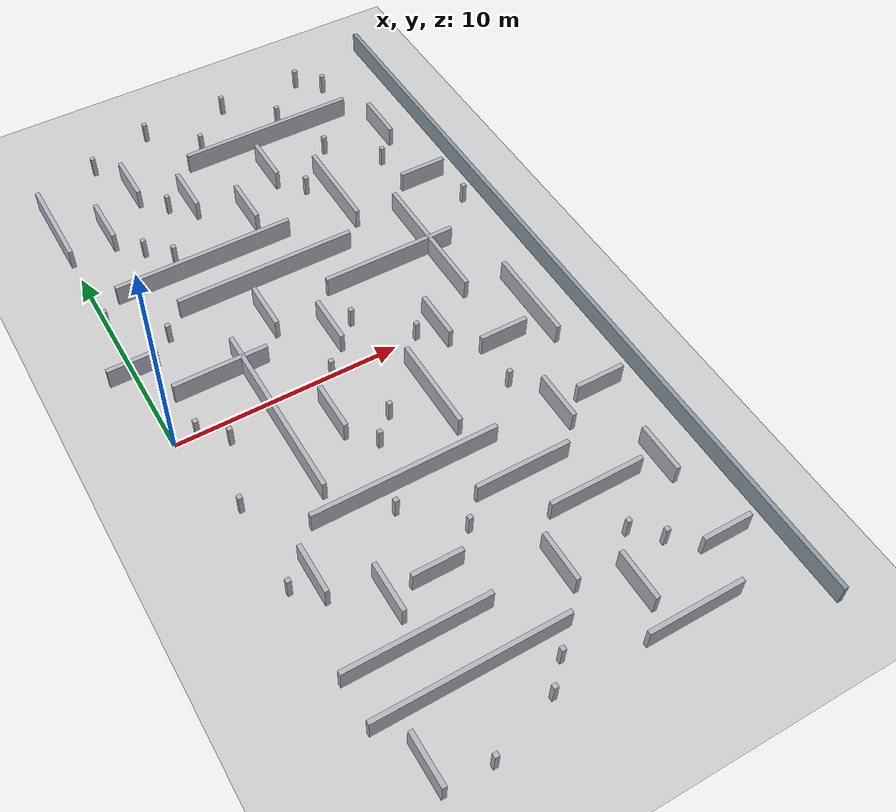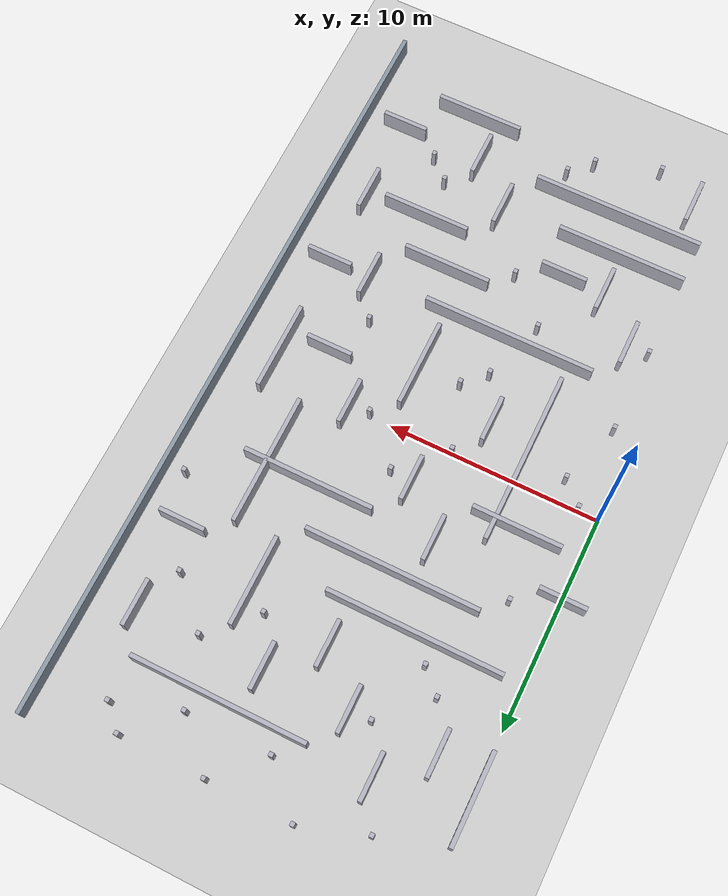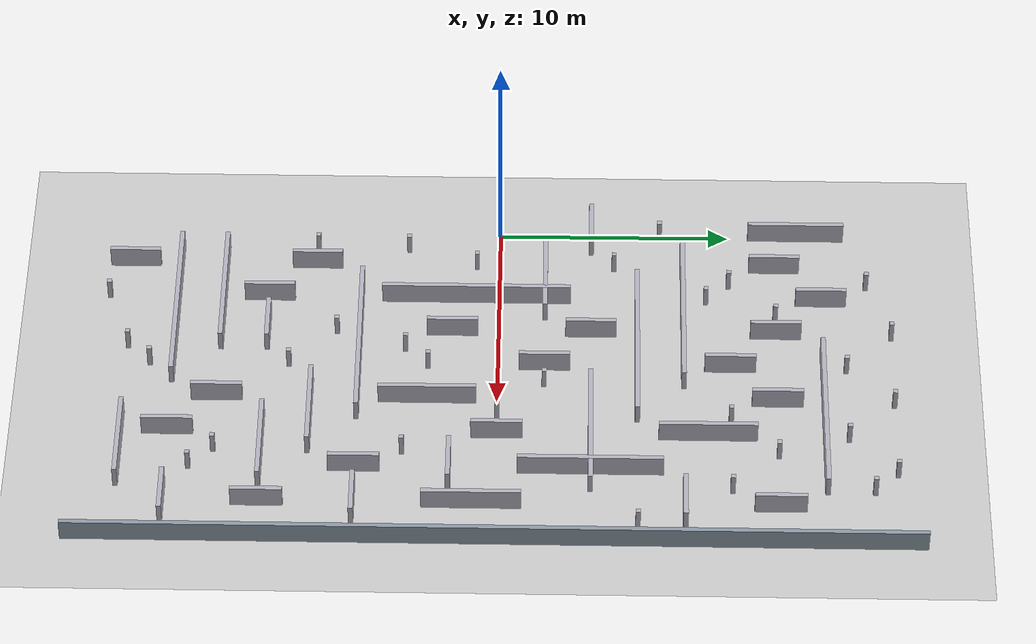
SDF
<sdf version="1.6">
 <world name="maze">
  <include><uri>model://sun</uri></include>
  <include><uri>model://ground_plane</uri></include>
  <model name="shell_e">
   <pose>18.000 0.000 0.500 0 0 0</pose>
   <static>true</static>
   <link name="link">
    <collision name="collision"><geometry><box><size>0.200 36.200 1.000</size></box></geometry></collision>
    <visual name="visual">
     <geometry><box><size>0.200 36.200 1.000</size></box></geometry>
     <material><ambient>0.55 0.6 0.65 1</ambient><diffuse>0.55 0.6 0.65 1</diffuse></material>
    </visual>
   </link>
  </model>
  <model name="mv033">
   <pose>0.000 7.000 0.500 0 0 0</pose>
   <static>true</static>
   <link name="link">
    <collision name="collision"><geometry><box><size>0.200 0.200 1.000</size></box></geometry></collision>
    <visual name="visual">
     <geometry><box><size>0.200 0.200 1.000</size></box></geometry>
     <material><ambient>0.7 0.7 0.75 1</ambient><diffuse>0.7 0.7 0.75 1</diffuse></material>
    </visual>
   </link>
  </model>
  <model name="mv034">
   <pose>0.000 13.000 0.500 0 0 0</pose>
   <static>true</static>
   <link name="link">
    <collision name="collision"><geometry><box><size>0.200 4.200 1.000</size></box></geometry></collision>
    <visual name="visual">
     <geometry><box><size>0.200 4.200 1.000</size></box></geometry>
     <material><ambient>0.7 0.7 0.75 1</ambient><diffuse>0.7 0.7 0.75 1</diffuse></material>
    </visual>
   </link>
  </model>
  <model name="mv035">
   <pose>2.000 -16.000 0.500 0 0 0</pose>
   <static>true</static>
   <link name="link">
    <collision name="collision"><geometry><box><size>0.200 2.200 1.000</size></box></geometry></collision>
    <visual name="visual">
     <geometry><box><size>0.200 2.200 1.000</size></box></geometry>
     <material><ambient>0.7 0.7 0.75 1</ambient><diffuse>0.7 0.7 0.75 1</diffuse></material>
    </visual>
   </link>
  </model>
  <model name="mv036">
   <pose>2.000 -8.000 0.500 0 0 0</pose>
   <static>true</static>
   <link name="link">
    <collision name="collision"><geometry><box><size>0.200 2.200 1.000</size></box></geometry></collision>
    <visual name="visual">
     <geometry><box><size>0.200 2.200 1.000</size></box></geometry>
     <material><ambient>0.7 0.7 0.75 1</ambient><diffuse>0.7 0.7 0.75 1</diffuse></material>
    </visual>
   </link>
  </model>
  <model name="mv037">
   <pose>2.000 -1.000 0.500 0 0 0</pose>
   <static>true</static>
   <link name="link">
    <collision name="collision"><geometry><box><size>0.200 0.200 1.000</size></box></geometry></collision>
    <visual name="visual">
     <geometry><box><size>0.200 0.200 1.000</size></box></geometry>
     <material><ambient>0.7 0.7 0.75 1</ambient><diffuse>0.7 0.7 0.75 1</diffuse></material>
    </visual>
   </link>
  </model>
  <model name="mv038">
   <pose>2.000 5.000 0.500 0 0 0</pose>
   <static>true</static>
   <link name="link">
    <collision name="collision"><geometry><box><size>0.200 0.200 1.000</size></box></geometry></collision>
    <visual name="visual">
     <geometry><box><size>0.200 0.200 1.000</size></box></geometry>
     <material><ambient>0.7 0.7 0.75 1</ambient><diffuse>0.7 0.7 0.75 1</diffuse></material>
    </visual>
   </link>
  </model>
  <model name="mv039">
   <pose>2.000 12.000 0.500 0 0 0</pose>
   <static>true</static>
   <link name="link">
    <collision name="collision"><geometry><box><size>0.200 2.200 1.000</size></box></geometry></collision>
    <visual name="visual">
     <geometry><box><size>0.200 2.200 1.000</size></box></geometry>
     <material><ambient>0.7 0.7 0.75 1</ambient><diffuse>0.7 0.7 0.75 1</diffuse></material>
    </visual>
   </link>
  </model>
  <model name="mv040">
   <pose>4.000 -17.000 0.500 0 0 0</pose>
   <static>true</static>
   <link name="link">
    <collision name="collision"><geometry><box><size>0.200 0.200 1.000</size></box></geometry></collision>
    <visual name="visual">
     <geometry><box><size>0.200 0.200 1.000</size></box></geometry>
     <material><ambient>0.7 0.7 0.75 1</ambient><diffuse>0.7 0.7 0.75 1</diffuse></material>
    </visual>
   </link>
  </model>
  <model name="mv041">
   <pose>4.000 -10.000 0.500 0 0 0</pose>
   <static>true</static>
   <link name="link">
    <collision name="collision"><geometry><box><size>0.200 2.200 1.000</size></box></geometry></collision>
    <visual name="visual">
     <geometry><box><size>0.200 2.200 1.000</size></box></geometry>
     <material><ambient>0.7 0.7 0.75 1</ambient><diffuse>0.7 0.7 0.75 1</diffuse></material>
    </visual>
   </link>
  </model>
  <model name="mv042">
   <pose>4.000 -1.000 0.500 0 0 0</pose>
   <static>true</static>
   <link name="link">
    <collision name="collision"><geometry><box><size>0.200 8.200 1.000</size></box></geometry></collision>
    <visual name="visual">
     <geometry><box><size>0.200 8.200 1.000</size></box></geometry>
     <material><ambient>0.7 0.7 0.75 1</ambient><diffuse>0.7 0.7 0.75 1</diffuse></material>
    </visual>
   </link>
  </model>
  <model name="mv043">
   <pose>4.000 9.000 0.500 0 0 0</pose>
   <static>true</static>
   <link name="link">
    <collision name="collision"><geometry><box><size>0.200 0.200 1.000</size></box></geometry></collision>
    <visual name="visual">
     <geometry><box><size>0.200 0.200 1.000</size></box></geometry>
     <material><ambient>0.7 0.7 0.75 1</ambient><diffuse>0.7 0.7 0.75 1</diffuse></material>
    </visual>
   </link>
  </model>
  <model name="mv044">
   <pose>4.000 14.000 0.500 0 0 0</pose>
   <static>true</static>
   <link name="link">
    <collision name="collision"><geometry><box><size>0.200 2.200 1.000</size></box></geometry></collision>
    <visual name="visual">
     <geometry><box><size>0.200 2.200 1.000</size></box></geometry>
     <material><ambient>0.7 0.7 0.75 1</ambient><diffuse>0.7 0.7 0.75 1</diffuse></material>
    </visual>
   </link>
  </model>
  <model name="mv045">
   <pose>6.000 -7.000 0.500 0 0 0</pose>
   <static>true</static>
   <link name="link">
    <collision name="collision"><geometry><box><size>0.200 0.200 1.000</size></box></geometry></collision>
    <visual name="visual">
     <geometry><box><size>0.200 0.200 1.000</size></box></geometry>
     <material><ambient>0.7 0.7 0.75 1</ambient><diffuse>0.7 0.7 0.75 1</diffuse></material>
    </visual>
   </link>
  </model>
  <model name="mv046">
   <pose>6.000 -2.000 0.500 0 0 0</pose>
   <static>true</static>
   <link name="link">
    <collision name="collision"><geometry><box><size>0.200 2.200 1.000</size></box></geometry></collision>
    <visual name="visual">
     <geometry><box><size>0.200 2.200 1.000</size></box></geometry>
     <material><ambient>0.7 0.7 0.75 1</ambient><diffuse>0.7 0.7 0.75 1</diffuse></material>
    </visual>
   </link>
  </model>
  <model name="mv047">
   <pose>6.000 4.000 0.500 0 0 0</pose>
   <static>true</static>
   <link name="link">
    <collision name="collision"><geometry><box><size>0.200 2.200 1.000</size></box></geometry></collision>
    <visual name="visual">
     <geometry><box><size>0.200 2.200 1.000</size></box></geometry>
     <material><ambient>0.7 0.7 0.75 1</ambient><diffuse>0.7 0.7 0.75 1</diffuse></material>
    </visual>
   </link>
  </model>
  <model name="mv048">
   <pose>6.000 12.000 0.500 0 0 0</pose>
   <static>true</static>
   <link name="link">
    <collision name="collision"><geometry><box><size>0.200 2.200 1.000</size></box></geometry></collision>
    <visual name="visual">
     <geometry><box><size>0.200 2.200 1.000</size></box></geometry>
     <material><ambient>0.7 0.7 0.75 1</ambient><diffuse>0.7 0.7 0.75 1</diffuse></material>
    </visual>
   </link>
  </model>
  <model name="mv049">
   <pose>6.000 17.000 0.500 0 0 0</pose>
   <static>true</static>
   <link name="link">
    <collision name="collision"><geometry><box><size>0.200 0.200 1.000</size></box></geometry></collision>
    <visual name="visual">
     <geometry><box><size>0.200 0.200 1.000</size></box></geometry>
     <material><ambient>0.7 0.7 0.75 1</ambient><diffuse>0.7 0.7 0.75 1</diffuse></material>
    </visual>
   </link>
  </model>
  <model name="mv050">
   <pose>8.000 -15.000 0.500 0 0 0</pose>
   <static>true</static>
   <link name="link">
    <collision name="collision"><geometry><box><size>0.200 0.200 1.000</size></box></geometry></collision>
    <visual name="visual">
     <geometry><box><size>0.200 0.200 1.000</size></box></geometry>
     <material><ambient>0.7 0.7 0.75 1</ambient><diffuse>0.7 0.7 0.75 1</diffuse></material>
    </visual>
   </link>
  </model>
  <model name="mv051">
   <pose>8.000 -9.000 0.500 0 0 0</pose>
   <static>true</static>
   <link name="link">
    <collision name="collision"><geometry><box><size>0.200 0.200 1.000</size></box></geometry></collision>
    <visual name="visual">
     <geometry><box><size>0.200 0.200 1.000</size></box></geometry>
     <material><ambient>0.7 0.7 0.75 1</ambient><diffuse>0.7 0.7 0.75 1</diffuse></material>
    </visual>
   </link>
  </model>
  <model name="mv052">
   <pose>8.000 -3.000 0.500 0 0 0</pose>
   <static>true</static>
   <link name="link">
    <collision name="collision"><geometry><box><size>0.200 0.200 1.000</size></box></geometry></collision>
    <visual name="visual">
     <geometry><box><size>0.200 0.200 1.000</size></box></geometry>
     <material><ambient>0.7 0.7 0.75 1</ambient><diffuse>0.7 0.7 0.75 1</diffuse></material>
    </visual>
   </link>
  </model>
  <model name="mv053">
   <pose>8.000 2.000 0.500 0 0 0</pose>
   <static>true</static>
   <link name="link">
    <collision name="collision"><geometry><box><size>0.200 2.200 1.000</size></box></geometry></collision>
    <visual name="visual">
     <geometry><box><size>0.200 2.200 1.000</size></box></geometry>
     <material><ambient>0.7 0.7 0.75 1</ambient><diffuse>0.7 0.7 0.75 1</diffuse></material>
    </visual>
   </link>
  </model>
  <model name="mv054">
   <pose>8.000 10.000 0.500 0 0 0</pose>
   <static>true</static>
   <link name="link">
    <collision name="collision"><geometry><box><size>0.200 2.200 1.000</size></box></geometry></collision>
    <visual name="visual">
     <geometry><box><size>0.200 2.200 1.000</size></box></geometry>
     <material><ambient>0.7 0.7 0.75 1</ambient><diffuse>0.7 0.7 0.75 1</diffuse></material>
    </visual>
   </link>
  </model>
  <model name="mv055">
   <pose>8.000 15.000 0.500 0 0 0</pose>
   <static>true</static>
   <link name="link">
    <collision name="collision"><geometry><box><size>0.200 0.200 1.000</size></box></geometry></collision>
    <visual name="visual">
     <geometry><box><size>0.200 0.200 1.000</size></box></geometry>
     <material><ambient>0.7 0.7 0.75 1</ambient><diffuse>0.7 0.7 0.75 1</diffuse></material>
    </visual>
   </link>
  </model>
  <model name="mv056">
   <pose>10.000 -12.000 0.500 0 0 0</pose>
   <static>true</static>
   <link name="link">
    <collision name="collision"><geometry><box><size>0.200 2.200 1.000</size></box></geometry></collision>
    <visual name="visual">
     <geometry><box><size>0.200 2.200 1.000</size></box></geometry>
     <material><ambient>0.7 0.7 0.75 1</ambient><diffuse>0.7 0.7 0.75 1</diffuse></material>
    </visual>
   </link>
  </model>
  <model name="mv057">
   <pose>10.000 -3.000 0.500 0 0 0</pose>
   <static>true</static>
   <link name="link">
    <collision name="collision"><geometry><box><size>0.200 4.200 1.000</size></box></geometry></collision>
    <visual name="visual">
     <geometry><box><size>0.200 4.200 1.000</size></box></geometry>
     <material><ambient>0.7 0.7 0.75 1</ambient><diffuse>0.7 0.7 0.75 1</diffuse></material>
    </visual>
   </link>
  </model>
  <model name="mv058">
   <pose>10.000 12.000 0.500 0 0 0</pose>
   <static>true</static>
   <link name="link">
    <collision name="collision"><geometry><box><size>0.200 2.200 1.000</size></box></geometry></collision>
    <visual name="visual">
     <geometry><box><size>0.200 2.200 1.000</size></box></geometry>
     <material><ambient>0.7 0.7 0.75 1</ambient><diffuse>0.7 0.7 0.75 1</diffuse></material>
    </visual>
   </link>
  </model>
  <model name="mv059">
   <pose>10.000 17.000 0.500 0 0 0</pose>
   <static>true</static>
   <link name="link">
    <collision name="collision"><geometry><box><size>0.200 0.200 1.000</size></box></geometry></collision>
    <visual name="visual">
     <geometry><box><size>0.200 0.200 1.000</size></box></geometry>
     <material><ambient>0.7 0.7 0.75 1</ambient><diffuse>0.7 0.7 0.75 1</diffuse></material>
    </visual>
   </link>
  </model>
  <model name="mv060">
   <pose>12.000 -14.000 0.500 0 0 0</pose>
   <static>true</static>
   <link name="link">
    <collision name="collision"><geometry><box><size>0.200 2.200 1.000</size></box></geometry></collision>
    <visual name="visual">
     <geometry><box><size>0.200 2.200 1.000</size></box></geometry>
     <material><ambient>0.7 0.7 0.75 1</ambient><diffuse>0.7 0.7 0.75 1</diffuse></material>
    </visual>
   </link>
  </model>
  <model name="mv061">
   <pose>12.000 0.000 0.500 0 0 0</pose>
   <static>true</static>
   <link name="link">
    <collision name="collision"><geometry><box><size>0.200 2.200 1.000</size></box></geometry></collision>
    <visual name="visual">
     <geometry><box><size>0.200 2.200 1.000</size></box></geometry>
     <material><ambient>0.7 0.7 0.75 1</ambient><diffuse>0.7 0.7 0.75 1</diffuse></material>
    </visual>
   </link>
  </model>
  <model name="mv062">
   <pose>12.000 9.000 0.500 0 0 0</pose>
   <static>true</static>
   <link name="link">
    <collision name="collision"><geometry><box><size>0.200 4.200 1.000</size></box></geometry></collision>
    <visual name="visual">
     <geometry><box><size>0.200 4.200 1.000</size></box></geometry>
     <material><ambient>0.7 0.7 0.75 1</ambient><diffuse>0.7 0.7 0.75 1</diffuse></material>
    </visual>
   </link>
  </model>
  <model name="mv063">
   <pose>12.000 15.000 0.500 0 0 0</pose>
   <static>true</static>
   <link name="link">
    <collision name="collision"><geometry><box><size>0.200 0.200 1.000</size></box></geometry></collision>
    <visual name="visual">
     <geometry><box><size>0.200 0.200 1.000</size></box></geometry>
     <material><ambient>0.7 0.7 0.75 1</ambient><diffuse>0.7 0.7 0.75 1</diffuse></material>
    </visual>
   </link>
  </model>
  <model name="mv064">
   <pose>14.000 -13.000 0.500 0 0 0</pose>
   <static>true</static>
   <link name="link">
    <collision name="collision"><geometry><box><size>0.200 0.200 1.000</size></box></geometry></collision>
    <visual name="visual">
     <geometry><box><size>0.200 0.200 1.000</size></box></geometry>
     <material><ambient>0.7 0.7 0.75 1</ambient><diffuse>0.7 0.7 0.75 1</diffuse></material>
    </visual>
   </link>
  </model>
  <model name="mv065">
   <pose>14.000 -6.000 0.500 0 0 0</pose>
   <static>true</static>
   <link name="link">
    <collision name="collision"><geometry><box><size>0.200 2.200 1.000</size></box></geometry></collision>
    <visual name="visual">
     <geometry><box><size>0.200 2.200 1.000</size></box></geometry>
     <material><ambient>0.7 0.7 0.75 1</ambient><diffuse>0.7 0.7 0.75 1</diffuse></material>
    </visual>
   </link>
  </model>
  <model name="mv066">
   <pose>14.000 4.000 0.500 0 0 0</pose>
   <static>true</static>
   <link name="link">
    <collision name="collision"><geometry><box><size>0.200 6.200 1.000</size></box></geometry></collision>
    <visual name="visual">
     <geometry><box><size>0.200 6.200 1.000</size></box></geometry>
     <material><ambient>0.7 0.7 0.75 1</ambient><diffuse>0.7 0.7 0.75 1</diffuse></material>
    </visual>
   </link>
  </model>
  <model name="mv067">
   <pose>14.000 17.000 0.500 0 0 0</pose>
   <static>true</static>
   <link name="link">
    <collision name="collision"><geometry><box><size>0.200 0.200 1.000</size></box></geometry></collision>
    <visual name="visual">
     <geometry><box><size>0.200 0.200 1.000</size></box></geometry>
     <material><ambient>0.7 0.7 0.75 1</ambient><diffuse>0.7 0.7 0.75 1</diffuse></material>
    </visual>
   </link>
  </model>
  <model name="mv068">
   <pose>16.000 -10.000 0.500 0 0 0</pose>
   <static>true</static>
   <link name="link">
    <collision name="collision"><geometry><box><size>0.200 2.200 1.000</size></box></geometry></collision>
    <visual name="visual">
     <geometry><box><size>0.200 2.200 1.000</size></box></geometry>
     <material><ambient>0.7 0.7 0.75 1</ambient><diffuse>0.7 0.7 0.75 1</diffuse></material>
    </visual>
   </link>
  </model>
  <model name="mv069">
   <pose>16.000 -1.000 0.500 0 0 0</pose>
   <static>true</static>
   <link name="link">
    <collision name="collision"><geometry><box><size>0.200 4.200 1.000</size></box></geometry></collision>
    <visual name="visual">
     <geometry><box><size>0.200 4.200 1.000</size></box></geometry>
     <material><ambient>0.7 0.7 0.75 1</ambient><diffuse>0.7 0.7 0.75 1</diffuse></material>
    </visual>
   </link>
  </model>
  <model name="mv070">
   <pose>16.000 12.000 0.500 0 0 0</pose>
   <static>true</static>
   <link name="link">
    <collision name="collision"><geometry><box><size>0.200 2.200 1.000</size></box></geometry></collision>
    <visual name="visual">
     <geometry><box><size>0.200 2.200 1.000</size></box></geometry>
     <material><ambient>0.7 0.7 0.75 1</ambient><diffuse>0.7 0.7 0.75 1</diffuse></material>
    </visual>
   </link>
  </model>
  <model name="mh002">
   <pose>7.000 -16.000 0.500 0 0 0</pose>
   <static>true</static>
   <link name="link">
    <collision name="collision"><geometry><box><size>0.200 0.200 1.000</size></box></geometry></collision>
    <visual name="visual">
     <geometry><box><size>0.200 0.200 1.000</size></box></geometry>
     <material><ambient>0.7 0.7 0.75 1</ambient><diffuse>0.7 0.7 0.75 1</diffuse></material>
    </visual>
   </link>
  </model>
  <model name="mh003">
   <pose>13.000 -16.000 0.500 0 0 0</pose>
   <static>true</static>
   <link name="link">
    <collision name="collision"><geometry><box><size>4.200 0.200 1.000</size></box></geometry></collision>
    <visual name="visual">
     <geometry><box><size>4.200 0.200 1.000</size></box></geometry>
     <material><ambient>0.7 0.7 0.75 1</ambient><diffuse>0.7 0.7 0.75 1</diffuse></material>
    </visual>
   </link>
  </model>
  <model name="mh007">
   <pose>5.000 -14.000 0.500 0 0 0</pose>
   <static>true</static>
   <link name="link">
    <collision name="collision"><geometry><box><size>8.200 0.200 1.000</size></box></geometry></collision>
    <visual name="visual">
     <geometry><box><size>8.200 0.200 1.000</size></box></geometry>
     <material><ambient>0.7 0.7 0.75 1</ambient><diffuse>0.7 0.7 0.75 1</diffuse></material>
    </visual>
   </link>
  </model>
  <model name="mh008">
   <pose>16.000 -14.000 0.500 0 0 0</pose>
   <static>true</static>
   <link name="link">
    <collision name="collision"><geometry><box><size>2.200 0.200 1.000</size></box></geometry></collision>
    <visual name="visual">
     <geometry><box><size>2.200 0.200 1.000</size></box></geometry>
     <material><ambient>0.7 0.7 0.75 1</ambient><diffuse>0.7 0.7 0.75 1</diffuse></material>
    </visual>
   </link>
  </model>
  <model name="mh011">
   <pose>4.000 -12.000 0.500 0 0 0</pose>
   <static>true</static>
   <link name="link">
    <collision name="collision"><geometry><box><size>6.200 0.200 1.000</size></box></geometry></collision>
    <visual name="visual">
     <geometry><box><size>6.200 0.200 1.000</size></box></geometry>
     <material><ambient>0.7 0.7 0.75 1</ambient><diffuse>0.7 0.7 0.75 1</diffuse></material>
    </visual>
   </link>
  </model>
  <model name="mh012">
   <pose>13.000 -12.000 0.500 0 0 0</pose>
   <static>true</static>
   <link name="link">
    <collision name="collision"><geometry><box><size>0.200 0.200 1.000</size></box></geometry></collision>
    <visual name="visual">
     <geometry><box><size>0.200 0.200 1.000</size></box></geometry>
     <material><ambient>0.7 0.7 0.75 1</ambient><diffuse>0.7 0.7 0.75 1</diffuse></material>
    </visual>
   </link>
  </model>
  <model name="mh015">
   <pose>6.000 -10.000 0.500 0 0 0</pose>
   <static>true</static>
   <link name="link">
    <collision name="collision"><geometry><box><size>2.200 0.200 1.000</size></box></geometry></collision>
    <visual name="visual">
     <geometry><box><size>2.200 0.200 1.000</size></box></geometry>
     <material><ambient>0.7 0.7 0.75 1</ambient><diffuse>0.7 0.7 0.75 1</diffuse></material>
    </visual>
   </link>
  </model>
  <model name="mh016">
   <pose>13.000 -10.000 0.500 0 0 0</pose>
   <static>true</static>
   <link name="link">
    <collision name="collision"><geometry><box><size>4.200 0.200 1.000</size></box></geometry></collision>
    <visual name="visual">
     <geometry><box><size>4.200 0.200 1.000</size></box></geometry>
     <material><ambient>0.7 0.7 0.75 1</ambient><diffuse>0.7 0.7 0.75 1</diffuse></material>
    </visual>
   </link>
  </model>
  <model name="mh019">
   <pose>1.000 -8.000 0.500 0 0 0</pose>
   <static>true</static>
   <link name="link">
    <collision name="collision"><geometry><box><size>0.200 0.200 1.000</size></box></geometry></collision>
    <visual name="visual">
     <geometry><box><size>0.200 0.200 1.000</size></box></geometry>
     <material><ambient>0.7 0.7 0.75 1</ambient><diffuse>0.7 0.7 0.75 1</diffuse></material>
    </visual>
   </link>
  </model>
  <model name="mh020">
   <pose>11.000 -8.000 0.500 0 0 0</pose>
   <static>true</static>
   <link name="link">
    <collision name="collision"><geometry><box><size>4.200 0.200 1.000</size></box></geometry></collision>
    <visual name="visual">
     <geometry><box><size>4.200 0.200 1.000</size></box></geometry>
     <material><ambient>0.7 0.7 0.75 1</ambient><diffuse>0.7 0.7 0.75 1</diffuse></material>
    </visual>
   </link>
  </model>
  <model name="mh022">
   <pose>7.000 -6.000 0.500 0 0 0</pose>
   <static>true</static>
   <link name="link">
    <collision name="collision"><geometry><box><size>8.200 0.200 1.000</size></box></geometry></collision>
    <visual name="visual">
     <geometry><box><size>8.200 0.200 1.000</size></box></geometry>
     <material><ambient>0.7 0.7 0.75 1</ambient><diffuse>0.7 0.7 0.75 1</diffuse></material>
    </visual>
   </link>
  </model>
  <model name="mh023">
   <pose>16.000 -6.000 0.500 0 0 0</pose>
   <static>true</static>
   <link name="link">
    <collision name="collision"><geometry><box><size>2.200 0.200 1.000</size></box></geometry></collision>
    <visual name="visual">
     <geometry><box><size>2.200 0.200 1.000</size></box></geometry>
     <material><ambient>0.7 0.7 0.75 1</ambient><diffuse>0.7 0.7 0.75 1</diffuse></material>
    </visual>
   </link>
  </model>
  <model name="mh026">
   <pose>1.000 -4.000 0.500 0 0 0</pose>
   <static>true</static>
   <link name="link">
    <collision name="collision"><geometry><box><size>0.200 0.200 1.000</size></box></geometry></collision>
    <visual name="visual">
     <geometry><box><size>0.200 0.200 1.000</size></box></geometry>
     <material><ambient>0.7 0.7 0.75 1</ambient><diffuse>0.7 0.7 0.75 1</diffuse></material>
    </visual>
   </link>
  </model>
  <model name="mh027">
   <pose>7.000 -4.000 0.500 0 0 0</pose>
   <static>true</static>
   <link name="link">
    <collision name="collision"><geometry><box><size>0.200 0.200 1.000</size></box></geometry></collision>
    <visual name="visual">
     <geometry><box><size>0.200 0.200 1.000</size></box></geometry>
     <material><ambient>0.7 0.7 0.75 1</ambient><diffuse>0.7 0.7 0.75 1</diffuse></material>
    </visual>
   </link>
  </model>
  <model name="mh028">
   <pose>13.000 -4.000 0.500 0 0 0</pose>
   <static>true</static>
   <link name="link">
    <collision name="collision"><geometry><box><size>0.200 0.200 1.000</size></box></geometry></collision>
    <visual name="visual">
     <geometry><box><size>0.200 0.200 1.000</size></box></geometry>
     <material><ambient>0.7 0.7 0.75 1</ambient><diffuse>0.7 0.7 0.75 1</diffuse></material>
    </visual>
   </link>
  </model>
  <model name="mh031">
   <pose>14.000 -2.000 0.500 0 0 0</pose>
   <static>true</static>
   <link name="link">
    <collision name="collision"><geometry><box><size>2.200 0.200 1.000</size></box></geometry></collision>
    <visual name="visual">
     <geometry><box><size>2.200 0.200 1.000</size></box></geometry>
     <material><ambient>0.7 0.7 0.75 1</ambient><diffuse>0.7 0.7 0.75 1</diffuse></material>
    </visual>
   </link>
  </model>
  <model name="mh033">
   <pose>1.000 0.000 0.500 0 0 0</pose>
   <static>true</static>
   <link name="link">
    <collision name="collision"><geometry><box><size>0.200 0.200 1.000</size></box></geometry></collision>
    <visual name="visual">
     <geometry><box><size>0.200 0.200 1.000</size></box></geometry>
     <material><ambient>0.7 0.7 0.75 1</ambient><diffuse>0.7 0.7 0.75 1</diffuse></material>
    </visual>
   </link>
  </model>
  <model name="mh034">
   <pose>7.000 0.000 0.500 0 0 0</pose>
   <static>true</static>
   <link name="link">
    <collision name="collision"><geometry><box><size>0.200 0.200 1.000</size></box></geometry></collision>
    <visual name="visual">
     <geometry><box><size>0.200 0.200 1.000</size></box></geometry>
     <material><ambient>0.7 0.7 0.75 1</ambient><diffuse>0.7 0.7 0.75 1</diffuse></material>
    </visual>
   </link>
  </model>
  <model name="mh035">
   <pose>11.000 0.000 0.500 0 0 0</pose>
   <static>true</static>
   <link name="link">
    <collision name="collision"><geometry><box><size>0.200 0.200 1.000</size></box></geometry></collision>
    <visual name="visual">
     <geometry><box><size>0.200 0.200 1.000</size></box></geometry>
     <material><ambient>0.7 0.7 0.75 1</ambient><diffuse>0.7 0.7 0.75 1</diffuse></material>
    </visual>
   </link>
  </model>
  <model name="mh038">
   <pose>3.000 2.000 0.500 0 0 0</pose>
   <static>true</static>
   <link name="link">
    <collision name="collision"><geometry><box><size>4.200 0.200 1.000</size></box></geometry></collision>
    <visual name="visual">
     <geometry><box><size>4.200 0.200 1.000</size></box></geometry>
     <material><ambient>0.7 0.7 0.75 1</ambient><diffuse>0.7 0.7 0.75 1</diffuse></material>
    </visual>
   </link>
  </model>
  <model name="mh039">
   <pose>9.000 2.000 0.500 0 0 0</pose>
   <static>true</static>
   <link name="link">
    <collision name="collision"><geometry><box><size>0.200 0.200 1.000</size></box></geometry></collision>
    <visual name="visual">
     <geometry><box><size>0.200 0.200 1.000</size></box></geometry>
     <material><ambient>0.7 0.7 0.75 1</ambient><diffuse>0.7 0.7 0.75 1</diffuse></material>
    </visual>
   </link>
  </model>
  <model name="mh042">
   <pose>0.000 4.000 0.500 0 0 0</pose>
   <static>true</static>
   <link name="link">
    <collision name="collision"><geometry><box><size>2.200 0.200 1.000</size></box></geometry></collision>
    <visual name="visual">
     <geometry><box><size>2.200 0.200 1.000</size></box></geometry>
     <material><ambient>0.7 0.7 0.75 1</ambient><diffuse>0.7 0.7 0.75 1</diffuse></material>
    </visual>
   </link>
  </model>
  <model name="mh043">
   <pose>12.000 4.000 0.500 0 0 0</pose>
   <static>true</static>
   <link name="link">
    <collision name="collision"><geometry><box><size>6.200 0.200 1.000</size></box></geometry></collision>
    <visual name="visual">
     <geometry><box><size>6.200 0.200 1.000</size></box></geometry>
     <material><ambient>0.7 0.7 0.75 1</ambient><diffuse>0.7 0.7 0.75 1</diffuse></material>
    </visual>
   </link>
  </model>
  <model name="mh047">
   <pose>7.000 6.000 0.500 0 0 0</pose>
   <static>true</static>
   <link name="link">
    <collision name="collision"><geometry><box><size>8.200 0.200 1.000</size></box></geometry></collision>
    <visual name="visual">
     <geometry><box><size>8.200 0.200 1.000</size></box></geometry>
     <material><ambient>0.7 0.7 0.75 1</ambient><diffuse>0.7 0.7 0.75 1</diffuse></material>
    </visual>
   </link>
  </model>
  <model name="mh048">
   <pose>17.000 6.000 0.500 0 0 0</pose>
   <static>true</static>
   <link name="link">
    <collision name="collision"><geometry><box><size>0.200 0.200 1.000</size></box></geometry></collision>
    <visual name="visual">
     <geometry><box><size>0.200 0.200 1.000</size></box></geometry>
     <material><ambient>0.7 0.7 0.75 1</ambient><diffuse>0.7 0.7 0.75 1</diffuse></material>
    </visual>
   </link>
  </model>
  <model name="mh052">
   <pose>5.000 8.000 0.500 0 0 0</pose>
   <static>true</static>
   <link name="link">
    <collision name="collision"><geometry><box><size>8.200 0.200 1.000</size></box></geometry></collision>
    <visual name="visual">
     <geometry><box><size>8.200 0.200 1.000</size></box></geometry>
     <material><ambient>0.7 0.7 0.75 1</ambient><diffuse>0.7 0.7 0.75 1</diffuse></material>
    </visual>
   </link>
  </model>
  <model name="mh053">
   <pose>16.000 8.000 0.500 0 0 0</pose>
   <static>true</static>
   <link name="link">
    <collision name="collision"><geometry><box><size>2.200 0.200 1.000</size></box></geometry></collision>
    <visual name="visual">
     <geometry><box><size>2.200 0.200 1.000</size></box></geometry>
     <material><ambient>0.7 0.7 0.75 1</ambient><diffuse>0.7 0.7 0.75 1</diffuse></material>
    </visual>
   </link>
  </model>
  <model name="mh057">
   <pose>3.000 10.000 0.500 0 0 0</pose>
   <static>true</static>
   <link name="link">
    <collision name="collision"><geometry><box><size>0.200 0.200 1.000</size></box></geometry></collision>
    <visual name="visual">
     <geometry><box><size>0.200 0.200 1.000</size></box></geometry>
     <material><ambient>0.7 0.7 0.75 1</ambient><diffuse>0.7 0.7 0.75 1</diffuse></material>
    </visual>
   </link>
  </model>
  <model name="mh058">
   <pose>11.000 10.000 0.500 0 0 0</pose>
   <static>true</static>
   <link name="link">
    <collision name="collision"><geometry><box><size>0.200 0.200 1.000</size></box></geometry></collision>
    <visual name="visual">
     <geometry><box><size>0.200 0.200 1.000</size></box></geometry>
     <material><ambient>0.7 0.7 0.75 1</ambient><diffuse>0.7 0.7 0.75 1</diffuse></material>
    </visual>
   </link>
  </model>
  <model name="mh059">
   <pose>15.000 10.000 0.500 0 0 0</pose>
   <static>true</static>
   <link name="link">
    <collision name="collision"><geometry><box><size>0.200 0.200 1.000</size></box></geometry></collision>
    <visual name="visual">
     <geometry><box><size>0.200 0.200 1.000</size></box></geometry>
     <material><ambient>0.7 0.7 0.75 1</ambient><diffuse>0.7 0.7 0.75 1</diffuse></material>
    </visual>
   </link>
  </model>
  <model name="mh062">
   <pose>5.000 12.000 0.500 0 0 0</pose>
   <static>true</static>
   <link name="link">
    <collision name="collision"><geometry><box><size>0.200 0.200 1.000</size></box></geometry></collision>
    <visual name="visual">
     <geometry><box><size>0.200 0.200 1.000</size></box></geometry>
     <material><ambient>0.7 0.7 0.75 1</ambient><diffuse>0.7 0.7 0.75 1</diffuse></material>
    </visual>
   </link>
  </model>
  <model name="mh063">
   <pose>13.000 12.000 0.500 0 0 0</pose>
   <static>true</static>
   <link name="link">
    <collision name="collision"><geometry><box><size>0.200 0.200 1.000</size></box></geometry></collision>
    <visual name="visual">
     <geometry><box><size>0.200 0.200 1.000</size></box></geometry>
     <material><ambient>0.7 0.7 0.75 1</ambient><diffuse>0.7 0.7 0.75 1</diffuse></material>
    </visual>
   </link>
  </model>
  <model name="mh067">
   <pose>11.000 14.000 0.500 0 0 0</pose>
   <static>true</static>
   <link name="link">
    <collision name="collision"><geometry><box><size>8.200 0.200 1.000</size></box></geometry></collision>
    <visual name="visual">
     <geometry><box><size>8.200 0.200 1.000</size></box></geometry>
     <material><ambient>0.7 0.7 0.75 1</ambient><diffuse>0.7 0.7 0.75 1</diffuse></material>
    </visual>
   </link>
  </model>
  <model name="mh071">
   <pose>3.000 16.000 0.500 0 0 0</pose>
   <static>true</static>
   <link name="link">
    <collision name="collision"><geometry><box><size>0.200 0.200 1.000</size></box></geometry></collision>
    <visual name="visual">
     <geometry><box><size>0.200 0.200 1.000</size></box></geometry>
     <material><ambient>0.7 0.7 0.75 1</ambient><diffuse>0.7 0.7 0.75 1</diffuse></material>
    </visual>
   </link>
  </model>
  <model name="mh072">
   <pose>15.000 16.000 0.500 0 0 0</pose>
   <static>true</static>
   <link name="link">
    <collision name="collision"><geometry><box><size>0.200 0.200 1.000</size></box></geometry></collision>
    <visual name="visual">
     <geometry><box><size>0.200 0.200 1.000</size></box></geometry>
     <material><ambient>0.7 0.7 0.75 1</ambient><diffuse>0.7 0.7 0.75 1</diffuse></material>
    </visual>
   </link>
  </model>
 </world>
</sdf>
